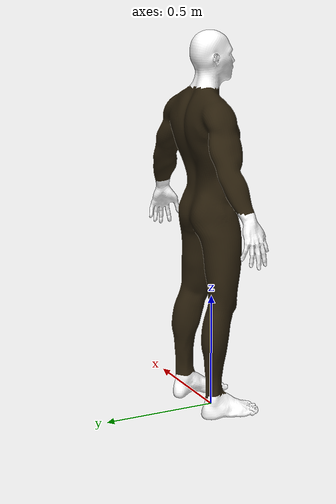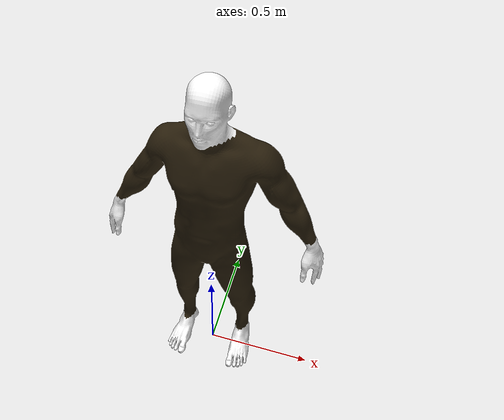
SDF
<?xml version="1.0" ?>
<sdf version='1.5'>
  <model name='C_male'>
    <static>true</static>
      <link name='C_male'>
         <collision name='C_malec'>
          <geometry>
            <mesh>
              <scale>0.08 0.08 0.08</scale>
              <uri>model://C_male/male3.dae</uri>
            </mesh>
          </geometry>
        </collision>
        <visual name='C_malec'>
          <geometry>
            <mesh>
              <scale>0.08 0.08 0.08</scale>
              <uri>model://C_male/male3.dae</uri>
            </mesh>
          </geometry>
          <material>
            <script>
              <name>C_male</name>
              <uri>model://C_male/male3.dae</uri>
            </script>
          </material>
        </visual>
      </link>
  </model>
</sdf>
